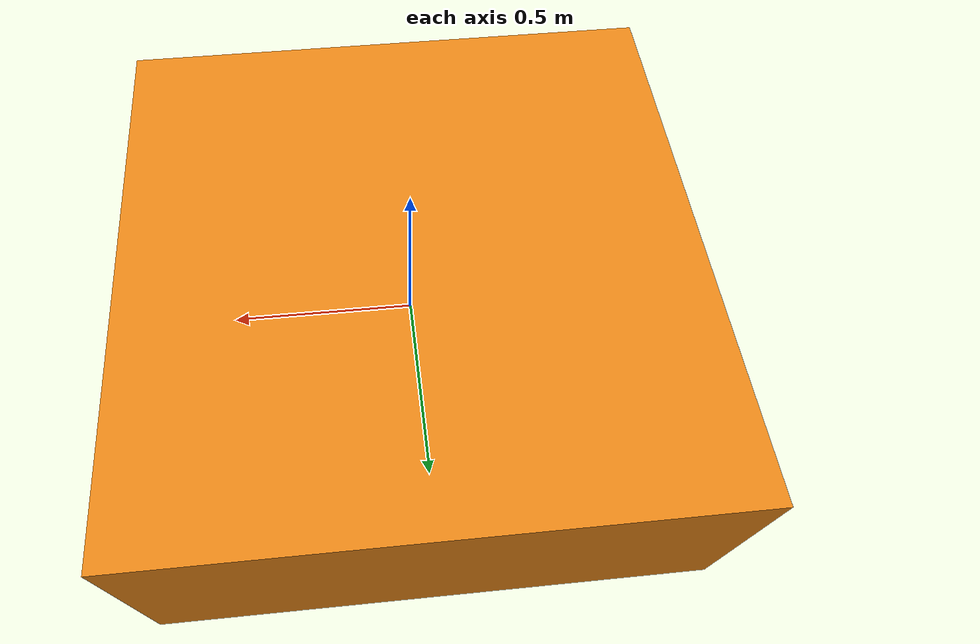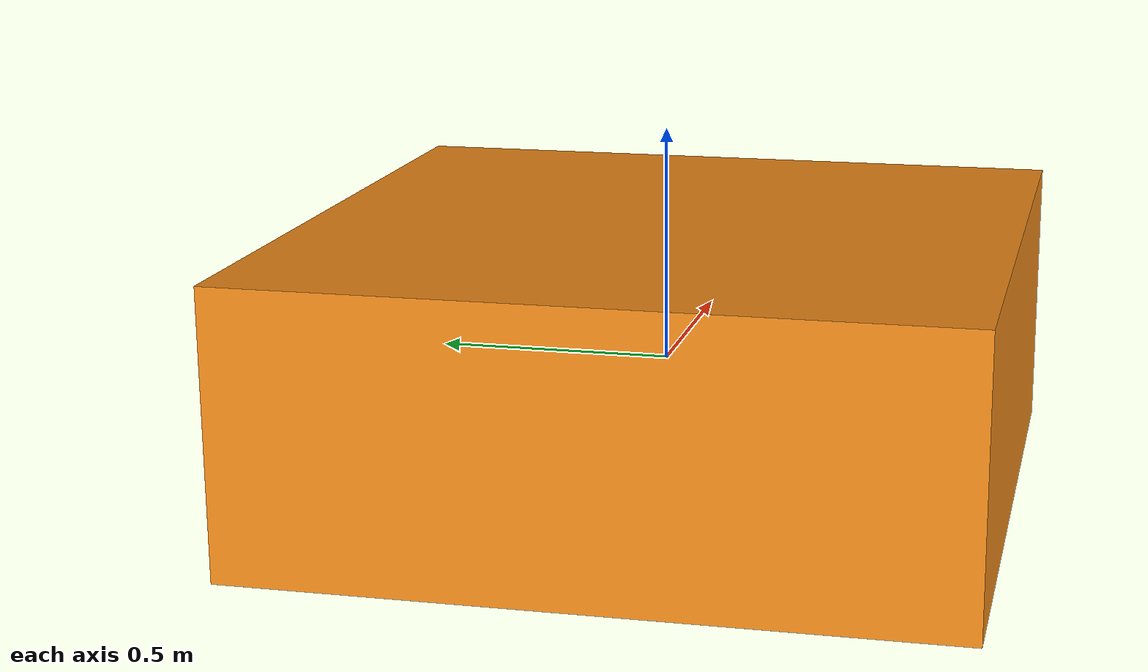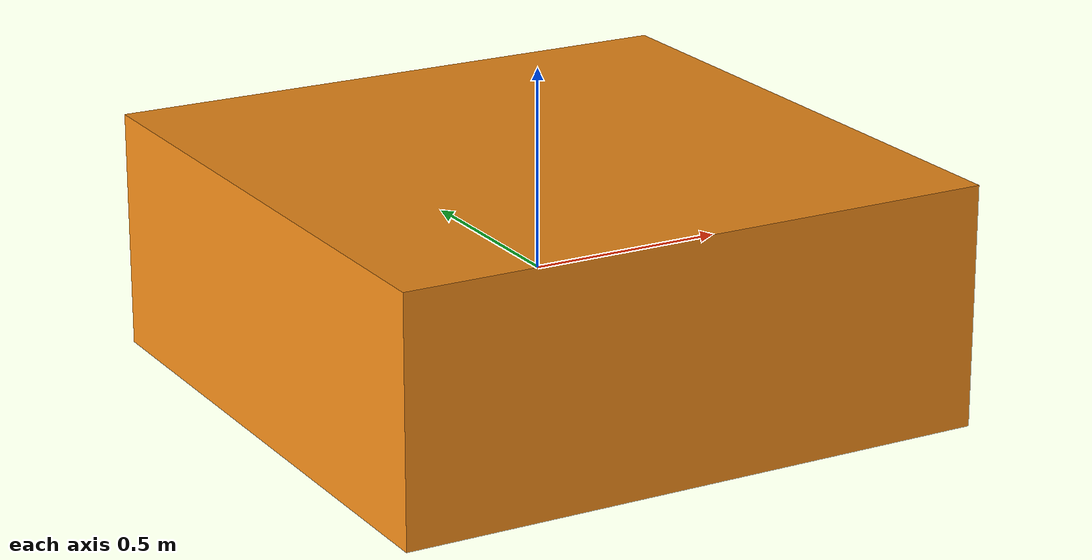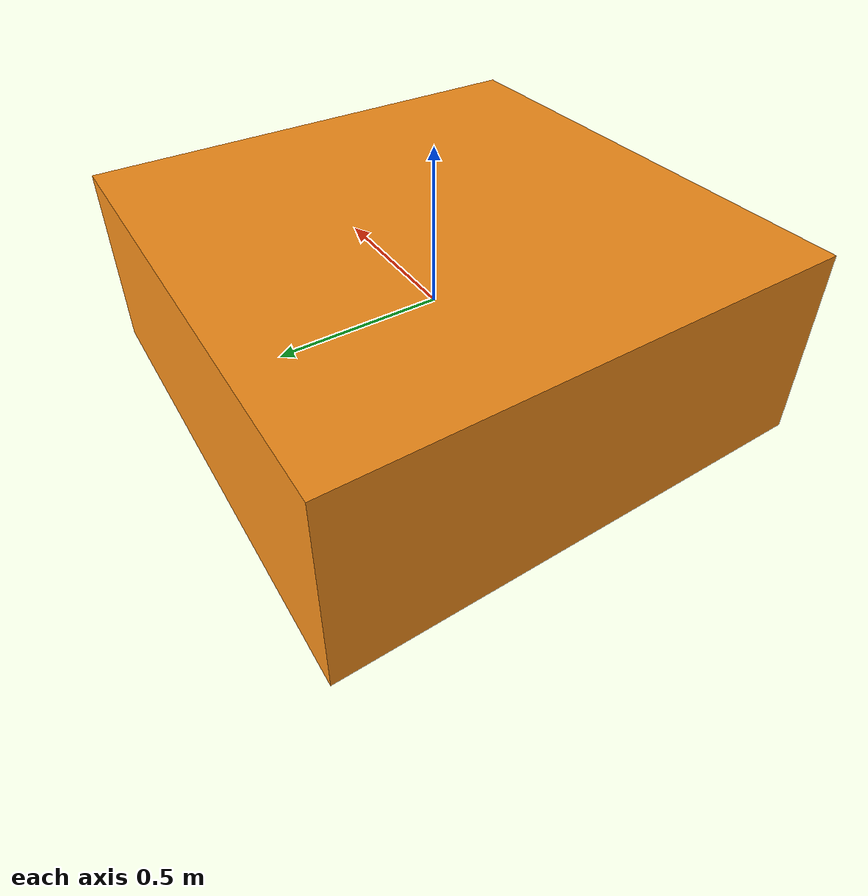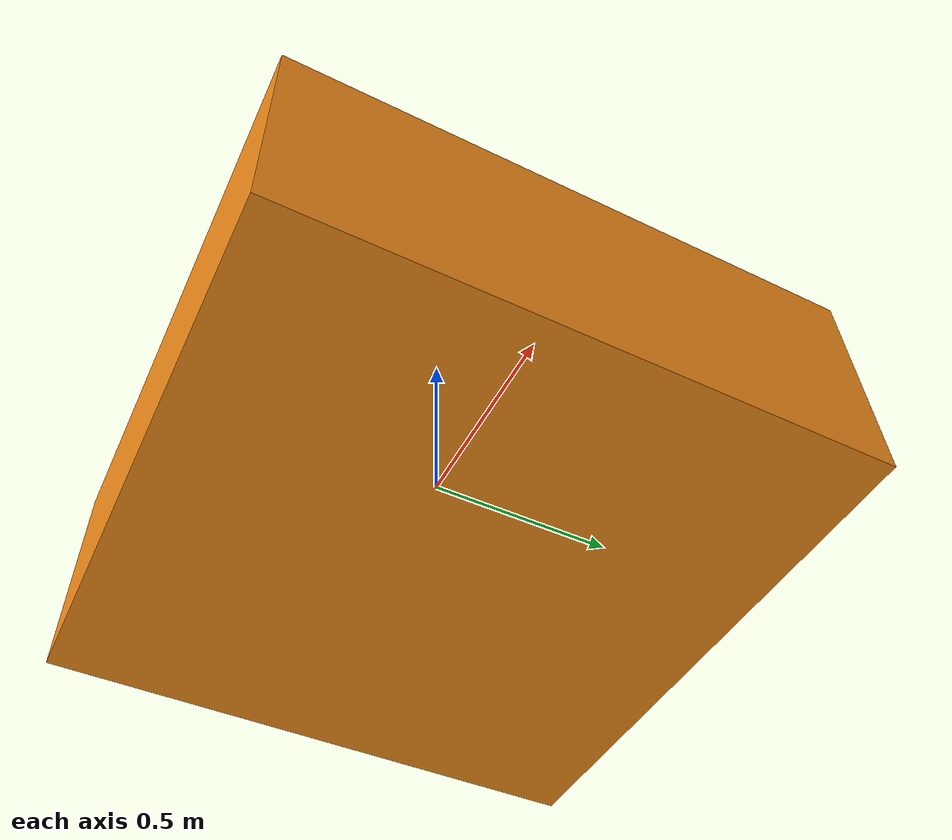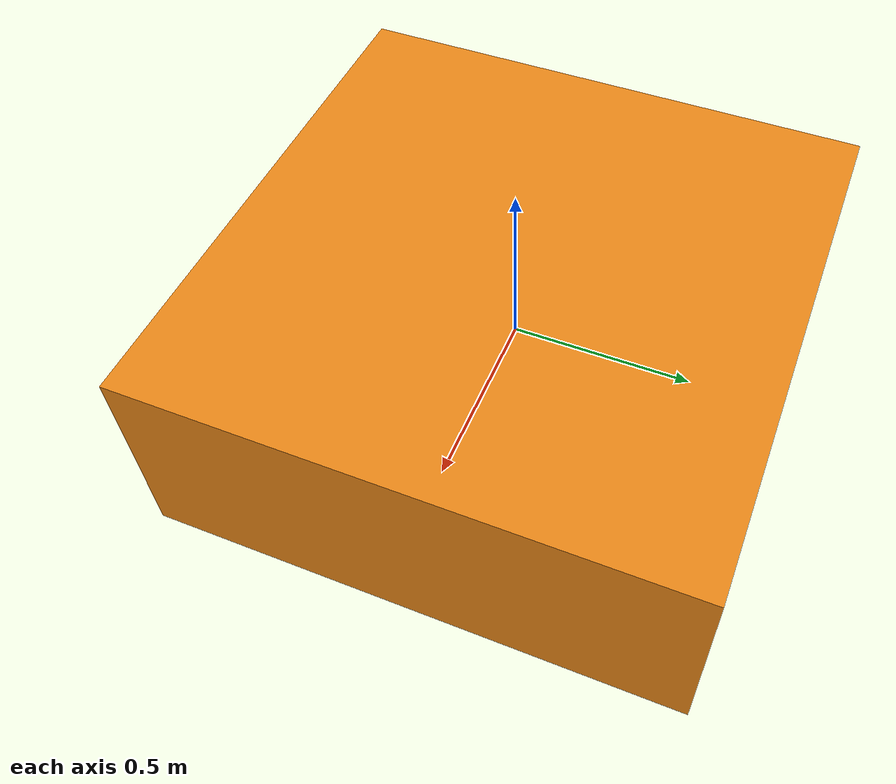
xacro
<?xml version="1.0"?>

<robot name="light_box">
  <link name="my_box">
    <inertial>
      <origin xyz="0 0 0" />
      <mass value="0.01" />
      <inertia ixx="0.0" ixy="0.0" ixz="0.0" iyy="0.0" iyz="0.0" izz="0.0" />
     </inertial>

     <visual>
       <origin xyz="0 0 0"/>
       <geometry>
         <box size="1.5 1.5 0.6" />
       </geometry>
     </visual>

     <collision>
       <origin xyz="0 0 0"/>
       <geometry>
         <box size="1.5 1.5 0.6" />
       </geometry>
     </collision>
  </link>

  <gazebo reference="my_box">
    <material>Gazebo/Orange</material>
  </gazebo>
</robot>
